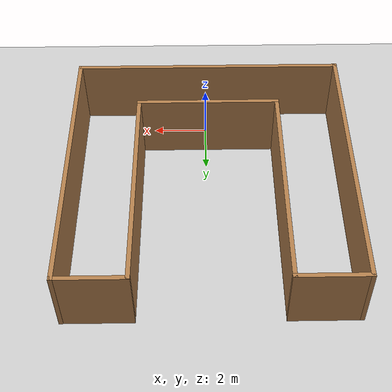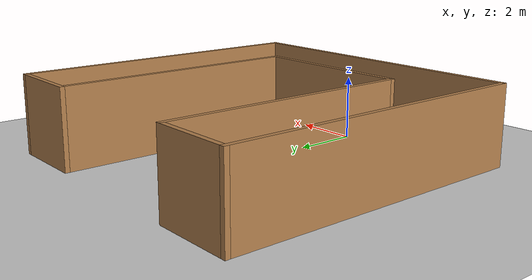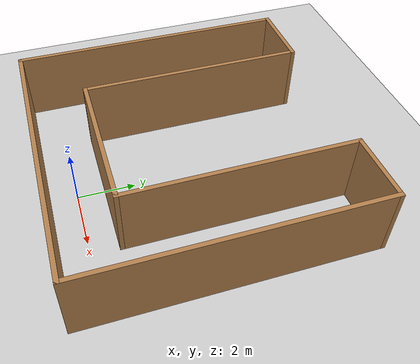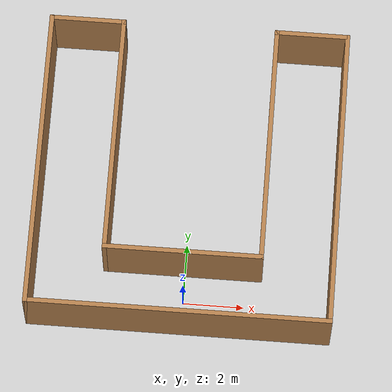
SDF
<sdf version="1.6">
 <world name="default">
  <light name="sun" type="directional">
   <pose>0 0 15 0 -0 0</pose>
   <diffuse>1 1 1 1</diffuse>
   <specular>0.1 0.1 0.1 1</specular>
   <attenuation>
    <range>1000</range>
    <constant>0.9</constant>
    <linear>0.01</linear>
    <quadratic>0.001</quadratic>
   </attenuation>
   <direction>-0.5 0.5 -1</direction>
  </light>
  <model name="ground_plane">
   <static>1</static>
   <link name="link">
    <collision name="collision">
     <geometry><plane><normal>0 0 1</normal><size>100 100</size></plane></geometry>
     <surface><friction><ode><mu>100</mu><mu2>50</mu2></ode></friction></surface>
    </collision>
    <visual name="visual">
     <transparency>1</transparency>
     <cast_shadows>0</cast_shadows>
     <geometry><plane><normal>0 0 1</normal><size>100 100</size></plane></geometry>
     <material>
      <script><uri>file://media/materials/scripts/gazebo.material</uri><name>Gazebo/Grey</name></script>
     </material>
    </visual>
   </link>
  </model>
  <gravity>0 0 -9.8</gravity>
  <magnetic_field>6e-06 2.3e-05 -4.2e-05</magnetic_field>
  <atmosphere type="adiabatic"/>
  <physics name="default_physics" default="0" type="ode">
   <max_step_size>0.001</max_step_size>
   <real_time_factor>1</real_time_factor>
   <real_time_update_rate>1000</real_time_update_rate>
  </physics>
  <scene><ambient>0.4 0.4 0.4 1</ambient><background>0.7 0.7 0.7 1</background><shadows>1</shadows></scene>
  <spherical_coordinates>
   <surface_model>EARTH_WGS84</surface_model>
   <latitude_deg>0</latitude_deg>
   <longitude_deg>0</longitude_deg>
   <elevation>0</elevation>
   <heading_deg>0</heading_deg>
  </spherical_coordinates>
  <model name="Home_Service_Robot">
   <pose>-0.110576 3.93896 0 0 -0 0</pose>
   <link name="Wall_100">
    <collision name="Wall_100_Collision">
     <geometry><box><size>8 0.15 2.5</size></box></geometry>
     <pose>0 0 1.25 0 -0 0</pose>
    </collision>
    <visual name="Wall_100_Visual">
     <pose>0 0 1.25 0 -0 0</pose>
     <geometry><box><size>8 0.15 2.5</size></box></geometry>
     <material>
      <script><uri>file://media/materials/scripts/gazebo.material</uri><name>Gazebo/Wood</name></script>
      <ambient>0.435294 0.796078 0.67451 1</ambient>
     </material>
    </visual>
    <pose>2.575 1 0 0 0 -1.5708</pose>
   </link>
   <link name="Wall_101">
    <collision name="Wall_101_Collision">
     <geometry><box><size>5.25 0.15 2.5</size></box></geometry>
     <pose>0 0 1.25 0 -0 0</pose>
    </collision>
    <visual name="Wall_101_Visual">
     <pose>0 0 1.25 0 -0 0</pose>
     <geometry><box><size>5.25 0.15 2.5</size></box></geometry>
     <material>
      <script><uri>file://media/materials/scripts/gazebo.material</uri><name>Gazebo/Wood</name></script>
      <ambient>0.435294 0.796078 0.67451 1</ambient>
     </material>
    </visual>
    <pose>0.025 -2.925 0 0 -0 3.14159</pose>
   </link>
   <link name="Wall_102">
    <collision name="Wall_102_Collision">
     <geometry><box><size>8 0.15 2.5</size></box></geometry>
     <pose>0 0 1.25 0 -0 0</pose>
    </collision>
    <visual name="Wall_102_Visual">
     <pose>0 0 1.25 0 -0 0</pose>
     <geometry><box><size>8 0.15 2.5</size></box></geometry>
     <material>
      <script><uri>file://media/materials/scripts/gazebo.material</uri><name>Gazebo/Wood</name></script>
      <ambient>0.435294 0.796078 0.67451 1</ambient>
     </material>
    </visual>
    <pose>-2.525 1 0 0 -0 1.5708</pose>
   </link>
   <link name="Wall_103">
    <collision name="Wall_103_Collision">
     <geometry><box><size>2.55 0.15 2.5</size></box></geometry>
     <pose>0 0 1.25 0 -0 0</pose>
    </collision>
    <visual name="Wall_103_Visual">
     <pose>0 0 1.25 0 -0 0</pose>
     <geometry><box><size>2.55 0.15 2.5</size></box></geometry>
     <material>
      <script><uri>file://media/materials/scripts/gazebo.material</uri><name>Gazebo/Wood</name></script>
      <ambient>0.435294 0.796078 0.67451 1</ambient>
     </material>
    </visual>
    <pose>-3.725 4.925 0 0 0 -3.14159</pose>
   </link>
   <link name="Wall_96">
    <collision name="Wall_96_Collision">
     <geometry><box><size>10 0.15 2.5</size></box></geometry>
     <pose>0 0 1.25 0 -0 0</pose>
    </collision>
    <visual name="Wall_96_Visual">
     <pose>0 0 1.25 0 -0 0</pose>
     <geometry><box><size>10 0.15 2.5</size></box></geometry>
     <material>
      <script><uri>file://media/materials/scripts/gazebo.material</uri><name>Gazebo/Wood</name></script>
      <ambient>0.435294 0.796078 0.67451 1</ambient>
     </material>
    </visual>
    <pose>-4.925 0 0 0 0 -1.5708</pose>
   </link>
   <link name="Wall_97">
    <collision name="Wall_97_Collision">
     <geometry><box><size>10 0.15 2.5</size></box></geometry>
     <pose>0 0 1.25 0 -0 0</pose>
    </collision>
    <visual name="Wall_97_Visual">
     <pose>0 0 1.25 0 -0 0</pose>
     <geometry><box><size>10 0.15 2.5</size></box></geometry>
     <material>
      <script><uri>file://media/materials/scripts/gazebo.material</uri><name>Gazebo/Wood</name></script>
      <ambient>0.435294 0.796078 0.67451 1</ambient>
     </material>
    </visual>
    <pose>0 -4.925 0 0 -0 0</pose>
   </link>
   <link name="Wall_98">
    <collision name="Wall_98_Collision">
     <geometry><box><size>10 0.15 2.5</size></box></geometry>
     <pose>0 0 1.25 0 -0 0</pose>
    </collision>
    <visual name="Wall_98_Visual">
     <pose>0 0 1.25 0 -0 0</pose>
     <geometry><box><size>10 0.15 2.5</size></box></geometry>
     <material>
      <script><uri>file://media/materials/scripts/gazebo.material</uri><name>Gazebo/Wood</name></script>
      <ambient>0.435294 0.796078 0.67451 1</ambient>
     </material>
    </visual>
    <pose>4.925 0 0 0 -0 1.5708</pose>
   </link>
   <link name="Wall_99">
    <collision name="Wall_99_Collision">
     <geometry><box><size>2.5 0.15 2.5</size></box></geometry>
     <pose>0 0 1.25 0 -0 0</pose>
    </collision>
    <visual name="Wall_99_Visual">
     <pose>0 0 1.25 0 -0 0</pose>
     <geometry><box><size>2.5 0.15 2.5</size></box></geometry>
     <material>
      <script><uri>file://media/materials/scripts/gazebo.material</uri><name>Gazebo/Wood</name></script>
      <ambient>0.435294 0.796078 0.67451 1</ambient>
     </material>
    </visual>
    <pose>3.75 4.925 0 0 -0 3.14159</pose>
   </link>
   <static>1</static>
  </model>
 </world>
</sdf>
